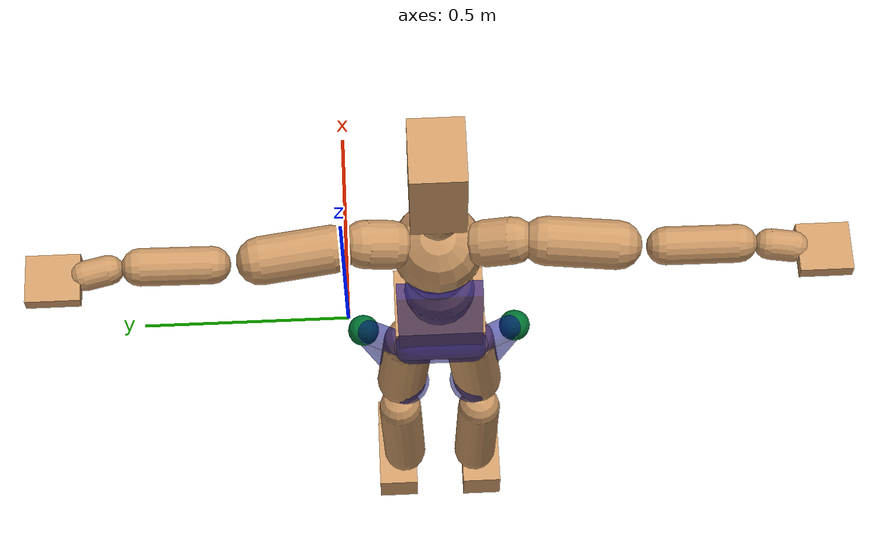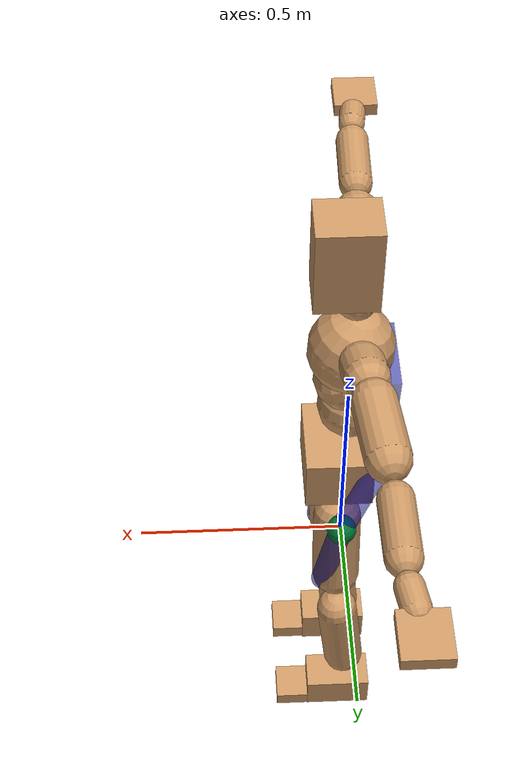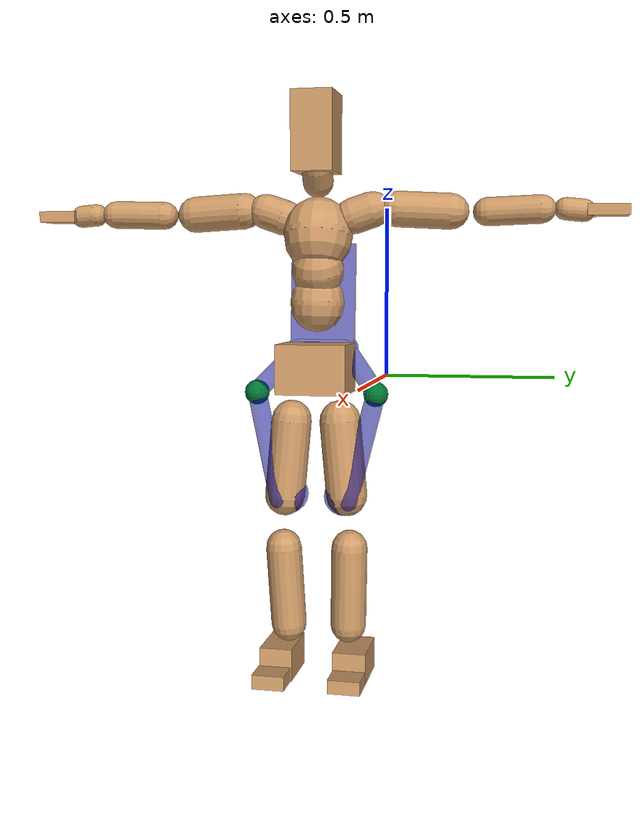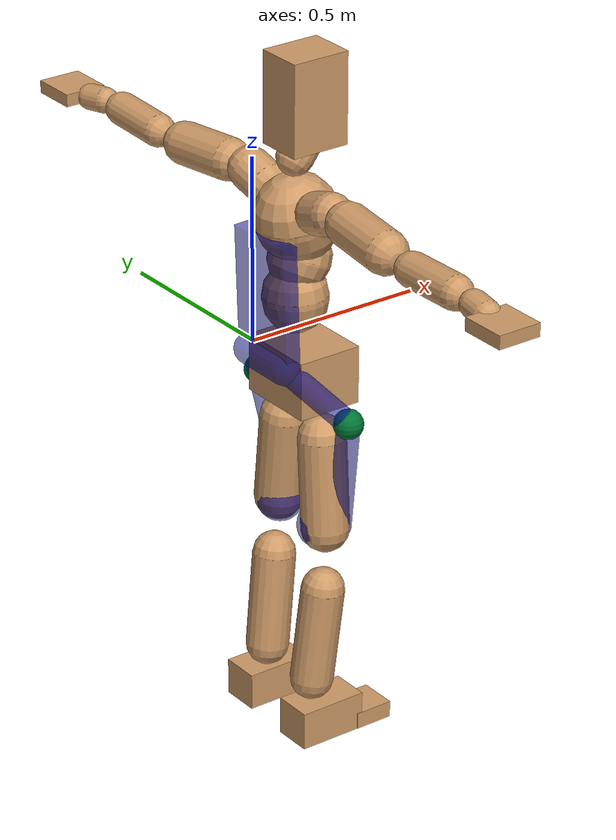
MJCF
<mujoco model="humanoid">
  <compiler coordinate="local" />
  <asset>
    <texture type="skybox" builtin="gradient" rgb1=".4 .5 .6" rgb2="0 0 0" width="100" height="100" />
    <texture builtin="flat" height="1278" mark="cross" markrgb="1 1 1" name="texgeom" random="0.01" rgb1="0.8 0.6 0.4" rgb2="0.8 0.6 0.4" type="cube" width="127" />
    <texture builtin="checker" height="100" name="texplane" rgb1="0 0 0" rgb2="0.8 0.8 0.8" type="2d" width="100" />
    <material name="MatPlane" reflectance="0.5" shininess="1" specular="1" texrepeat="60 60" texture="texplane" />
    <material name="geom" texture="texgeom" texuniform="true" />
  </asset>
  <worldbody>
    <light cutoff="100" diffuse="1 1 1" dir="-0 0 -1.3" directional="true" exponent="1" pos="0 0 1.3" specular=".1 .1 .1" />
    <body name="Pelvis" pos="-0.0018 -0.2233 0.0282">
      <geom type="box" pos="-0.0058 -0.0000 -0.0128" size="0.0875 0.1086 0.0767" quat="1.0000 0.0000 0.0000 0.0000" density="1000" conaffinity="1" condim="3" contype="7" margin="0.001" rgba="0.8 0.6 .4 1" />
      <body name="L_Hip" pos="-0.0054 0.0702 -0.0953">
        <joint name="L_Hip_x" type="hinge" pos="0 0 0" axis="1 0 0" stiffness="800" damping="80" armature="0.02" range="-180.0000 180.0000" limited="true" />
        <joint name="L_Hip_y" type="hinge" pos="0 0 0" axis="0 1 0" stiffness="800" damping="80" armature="0.02" range="-180.0000 180.0000" limited="true" />
        <joint name="L_Hip_z" type="hinge" pos="0 0 0" axis="0 0 1" stiffness="800" damping="80" armature="0.02" range="-180.0000 180.0000" limited="true" />
        <geom type="capsule" contype="1" conaffinity="1" density="2040.816327" fromto="-0.0009 0.0070 -0.0783 -0.0037 0.0278 -0.3135" size="0.0636" condim="3" margin="0.001" rgba="0.8 0.6 .4 1" />
        <body name="L_Knee" pos="-0.0037 0.0381 -0.3953">
          <joint name="L_Knee_x" type="hinge" pos="0 0 0" axis="1 0 0" stiffness="800" damping="80" armature="0.02" range="-180.0000 180.0000" limited="true" />
          <joint name="L_Knee_y" type="hinge" pos="0 0 0" axis="0 1 0" stiffness="800" damping="80" armature="0.02" range="-180.0000 180.0000" limited="true" />
          <joint name="L_Knee_z" type="hinge" pos="0 0 0" axis="0 0 1" stiffness="800" damping="80" armature="0.02" range="-180.0000 180.0000" limited="true" />
          <geom type="capsule" contype="1" conaffinity="1" density="1234.567901" fromto="-0.0091 -0.0028 -0.0850 -0.0367 -0.0113 -0.3400" size="0.0561" condim="3" margin="0.001" rgba="0.8 0.6 .4 1" />
          <body name="L_Ankle" pos="-0.0456 -0.0158 -0.4246">
            <joint name="L_Ankle_x" type="hinge" pos="0 0 0" axis="1 0 0" stiffness="800" damping="80" armature="0.02" range="-180.0000 180.0000" limited="true" />
            <joint name="L_Ankle_y" type="hinge" pos="0 0 0" axis="0 1 0" stiffness="800" damping="80" armature="0.02" range="-180.0000 180.0000" limited="true" />
            <joint name="L_Ankle_z" type="hinge" pos="0 0 0" axis="0 0 1" stiffness="800" damping="80" armature="0.02" range="-180.0000 180.0000" limited="true" />
            <geom type="box" pos="0.0255 0.0250 -0.0253" size="0.0897 0.0519 0.0492" quat="1.0000 0.0000 0.0000 0.0000" density="1000" conaffinity="1" condim="3" contype="7" margin="0.001" rgba="0.8 0.6 .4 1" />
            <body name="L_Toe" pos="0.1265 0.0293 -0.0586">
              <joint name="L_Toe_x" type="hinge" pos="0 0 0" axis="1 0 0" stiffness="500" damping="50" armature="0.02" range="-5.0000 5.0000" limited="true" />
              <joint name="L_Toe_y" type="hinge" pos="0 0 0" axis="0 1 0" stiffness="500" damping="50" armature="0.02" range="-5.0000 5.0000" limited="true" />
              <joint name="L_Toe_z" type="hinge" pos="0 0 0" axis="0 0 1" stiffness="500" damping="50" armature="0.02" range="-5.0000 5.0000" limited="true" />
              <geom type="box" pos="0.0261 -0.0032 0.0059" size="0.0523 0.0504 0.0213" quat="1.0000 0.0000 0.0000 0.0000" density="1000" conaffinity="1" condim="3" contype="7" margin="0.001" rgba="0.8 0.6 .4 1" />
            </body>
          </body>
        </body>
        <geom name="left_hip_motor" type="sphere" size="0.0385" pos="-0.000469 0.118289 0.005255" mass="0.53" contype="0" conaffinity="0" rgba="0.0 0.45 0.2 1" />
        <geom name="left_thigh_box" type="capsule" fromto="0.002551 0.111331 -0.023770 0.033895 0.039115 -0.325029" size="0.030" mass="0.1977" contype="0" conaffinity="0" rgba="0.0 0.0 0.55 0.55" />
        <geom name="left_hip_ring" type="sphere" pos="-0.007284 0.017379 -0.315218" size="0.061500" mass="0.0923" contype="0" conaffinity="0" rgba="0.0 0.0 0.55 0.55" />
      </body>
      <body name="R_Hip" pos="-0.0034 -0.0686 -0.0942">
        <joint name="R_Hip_x" type="hinge" pos="0 0 0" axis="1 0 0" stiffness="800" damping="80" armature="0.02" range="-180.0000 180.0000" limited="true" />
        <joint name="R_Hip_y" type="hinge" pos="0 0 0" axis="0 1 0" stiffness="800" damping="80" armature="0.02" range="-180.0000 180.0000" limited="true" />
        <joint name="R_Hip_z" type="hinge" pos="0 0 0" axis="0 0 1" stiffness="800" damping="80" armature="0.02" range="-180.0000 180.0000" limited="true" />
        <geom type="capsule" contype="1" conaffinity="1" density="2040.816327" fromto="-0.0019 -0.0078 -0.0803 -0.0073 -0.0310 -0.3215" size="0.0623" condim="3" margin="0.001" rgba="0.8 0.6 .4 1" />
        <body name="R_Knee" pos="-0.0096 -0.0415 -0.4040">
          <joint name="R_Knee_x" type="hinge" pos="0 0 0" axis="1 0 0" stiffness="800" damping="80" armature="0.02" range="-180.0000 180.0000" limited="true" />
          <joint name="R_Knee_y" type="hinge" pos="0 0 0" axis="0 1 0" stiffness="800" damping="80" armature="0.02" range="-180.0000 180.0000" limited="true" />
          <joint name="R_Knee_z" type="hinge" pos="0 0 0" axis="0 0 1" stiffness="800" damping="80" armature="0.02" range="-180.0000 180.0000" limited="true" />
          <geom type="capsule" contype="1" conaffinity="1" density="1234.567901" fromto="-0.0088 0.0033 -0.0852 -0.0352 0.0130 -0.3406" size="0.0559" condim="3" margin="0.001" rgba="0.8 0.6 .4 1" />
          <body name="R_Ankle" pos="-0.0443 0.0178 -0.4255">
            <joint name="R_Ankle_x" type="hinge" pos="0 0 0" axis="1 0 0" stiffness="800" damping="80" armature="0.02" range="-180.0000 180.0000" limited="true" />
            <joint name="R_Ankle_y" type="hinge" pos="0 0 0" axis="0 1 0" stiffness="800" damping="80" armature="0.02" range="-180.0000 180.0000" limited="true" />
            <joint name="R_Ankle_z" type="hinge" pos="0 0 0" axis="0 0 1" stiffness="800" damping="80" armature="0.02" range="-180.0000 180.0000" limited="true" />
            <geom type="box" pos="0.0271 -0.0225 -0.0186" size="0.0916 0.0513 0.0510" quat="1.0000 0.0000 0.0000 0.0000" density="1000" conaffinity="1" condim="3" contype="7" margin="0.001" rgba="0.8 0.6 .4 1" />
            <body name="R_Toe" pos="0.1312 -0.0297 -0.0513">
              <joint name="R_Toe_x" type="hinge" pos="0 0 0" axis="1 0 0" stiffness="500" damping="50" armature="0.02" range="-5.0000 5.0000" limited="true" />
              <joint name="R_Toe_y" type="hinge" pos="0 0 0" axis="0 1 0" stiffness="500" damping="50" armature="0.02" range="-5.0000 5.0000" limited="true" />
              <joint name="R_Toe_z" type="hinge" pos="0 0 0" axis="0 0 1" stiffness="500" damping="50" armature="0.02" range="-5.0000 5.0000" limited="true" />
              <geom type="box" pos="0.0240 0.0044 0.0046" size="0.0522 0.0507 0.0223" quat="1.0000 0.0000 0.0000 0.0000" density="1000" conaffinity="1" condim="3" contype="7" margin="0.001" rgba="0.8 0.6 .4 1" />
            </body>
          </body>
        </body>
        <geom name="right_hip_motor" type="sphere" size="0.0385" pos="-0.005199 -0.119211 0.003827" mass="0.53" contype="0" conaffinity="0" rgba="0.0 0.45 0.2 1" />
        <geom name="right_thigh_box" type="capsule" fromto="-0.002132 -0.112377 -0.025223 0.029619 -0.041620 -0.325993" size="0.030" mass="0.1977" contype="0" conaffinity="0" rgba="0.0 0.0 0.55 0.55" />
        <geom name="right_hip_ring" type="sphere" pos="-0.013104 -0.018825 -0.316393" size="0.060600" mass="0.0923" contype="0" conaffinity="0" rgba="0.0 0.0 0.55 0.55" />
      </body>
      <body name="Torso" pos="-0.0321 -0.0026 0.1167">
        <joint name="Torso_x" type="hinge" pos="0 0 0" axis="1 0 0" stiffness="1000" damping="100" armature="0.02" range="-180.0000 180.0000" limited="true" />
        <joint name="Torso_y" type="hinge" pos="0 0 0" axis="0 1 0" stiffness="1000" damping="100" armature="0.02" range="-180.0000 180.0000" limited="true" />
        <joint name="Torso_z" type="hinge" pos="0 0 0" axis="0 0 1" stiffness="1000" damping="100" armature="0.02" range="-180.0000 180.0000" limited="true" />
        <geom type="capsule" contype="1" conaffinity="1" density="2040.816327" fromto="0.0005 0.0027 0.0654 0.0006 0.0033 0.0799" size="0.0834" condim="3" margin="0.001" rgba="0.8 0.6 .4 1" />
        <body name="Spine" pos="0.0028 0.0071 0.1437">
          <joint name="Spine_x" type="hinge" pos="0 0 0" axis="1 0 0" stiffness="1000" damping="100" armature="0.02" range="-180.0000 180.0000" limited="true" />
          <joint name="Spine_y" type="hinge" pos="0 0 0" axis="0 1 0" stiffness="1000" damping="100" armature="0.02" range="-180.0000 180.0000" limited="true" />
          <joint name="Spine_z" type="hinge" pos="0 0 0" axis="0 0 1" stiffness="1000" damping="100" armature="0.02" range="-180.0000 180.0000" limited="true" />
          <geom type="capsule" contype="1" conaffinity="1" density="2040.816327" fromto="0.0123 0.0008 0.0258 0.0151 0.0009 0.0315" size="0.0802" condim="3" margin="0.001" rgba="0.8 0.6 .4 1" />
          <body name="Chest" pos="0.0246 0.0009 0.0572">
            <joint name="Chest_x" type="hinge" pos="0 0 0" axis="1 0 0" stiffness="1000" damping="100" armature="0.02" range="-180.0000 180.0000" limited="true" />
            <joint name="Chest_y" type="hinge" pos="0 0 0" axis="0 1 0" stiffness="1000" damping="100" armature="0.02" range="-180.0000 180.0000" limited="true" />
            <joint name="Chest_z" type="hinge" pos="0 0 0" axis="0 0 1" stiffness="1000" damping="100" armature="0.02" range="-180.0000 180.0000" limited="true" />
            <geom type="capsule" contype="1" conaffinity="1" density="2040.816327" fromto="-0.0179 -0.0010 0.0722 -0.0220 -0.0011 0.0882" size="0.1064" condim="3" margin="0.001" rgba="0.8 0.6 .4 1" />
            <body name="Neck" pos="-0.0384 -0.0034 0.2253">
              <joint name="Neck_x" type="hinge" pos="0 0 0" axis="1 0 0" stiffness="500" damping="50" armature="0.02" range="-180.0000 180.0000" limited="true" />
              <joint name="Neck_y" type="hinge" pos="0 0 0" axis="0 1 0" stiffness="500" damping="50" armature="0.02" range="-180.0000 180.0000" limited="true" />
              <joint name="Neck_z" type="hinge" pos="0 0 0" axis="0 0 1" stiffness="500" damping="50" armature="0.02" range="-180.0000 180.0000" limited="true" />
              <geom type="capsule" contype="1" conaffinity="1" density="1000" fromto="0.0111 0.0011 0.0135 0.0444 0.0044 0.0540" size="0.0471" condim="3" margin="0.001" rgba="0.8 0.6 .4 1" />
              <body name="Head" pos="0.0536 0.0064 0.0684">
                <joint name="Head_x" type="hinge" pos="0 0 0" axis="1 0 0" stiffness="500" damping="50" armature="0.02" range="-180.0000 180.0000" limited="true" />
                <joint name="Head_y" type="hinge" pos="0 0 0" axis="0 1 0" stiffness="500" damping="50" armature="0.02" range="-180.0000 180.0000" limited="true" />
                <joint name="Head_z" type="hinge" pos="0 0 0" axis="0 0 1" stiffness="500" damping="50" armature="0.02" range="-180.0000 180.0000" limited="true" />
                <geom type="box" pos="-0.0121 -0.0044 0.0909" size="0.0790 0.0633 0.1198" quat="1.0000 0.0000 0.0000 0.0000" density="1000" conaffinity="1" condim="3" contype="7" margin="0.001" rgba="0.8 0.6 .4 1" />
              </body>
            </body>
            <body name="L_Thorax" pos="-0.0329 0.0839 0.1287">
              <joint name="L_Thorax_x" type="hinge" pos="0 0 0" axis="1 0 0" stiffness="500" damping="50" armature="0.02" range="-180.0000 180.0000" limited="true" />
              <joint name="L_Thorax_y" type="hinge" pos="0 0 0" axis="0 1 0" stiffness="500" damping="50" armature="0.02" range="-180.0000 180.0000" limited="true" />
              <joint name="L_Thorax_z" type="hinge" pos="0 0 0" axis="0 0 1" stiffness="500" damping="50" armature="0.02" range="-180.0000 180.0000" limited="true" />
              <geom type="capsule" contype="1" conaffinity="1" density="1000" fromto="-0.0019 0.0201 0.0066 -0.0076 0.0803 0.0264" size="0.0559" condim="3" margin="0.001" rgba="0.8 0.6 .4 1" />
              <body name="L_Shoulder" pos="-0.0106 0.0973 0.0305">
                <joint name="L_Shoulder_x" type="hinge" pos="0 0 0" axis="1 0 0" stiffness="500" damping="50" armature="0.02" range="-180.0000 180.0000" limited="true" />
                <joint name="L_Shoulder_y" type="hinge" pos="0 0 0" axis="0 1 0" stiffness="500" damping="50" armature="0.02" range="-180.0000 180.0000" limited="true" />
                <joint name="L_Shoulder_z" type="hinge" pos="0 0 0" axis="0 0 1" stiffness="500" damping="50" armature="0.02" range="-180.0000 180.0000" limited="true" />
                <geom type="capsule" contype="1" conaffinity="1" density="1000" fromto="-0.0060 0.0547 -0.0028 -0.0240 0.2190 -0.0109" size="0.0552" condim="3" margin="0.001" rgba="0.8 0.6 .4 1" />
                <body name="L_Elbow" pos="-0.0288 0.2748 -0.0147">
                  <joint name="L_Elbow_x" type="hinge" pos="0 0 0" axis="1 0 0" stiffness="500" damping="50" armature="0.02" range="-180.0000 180.0000" limited="true" />
                  <joint name="L_Elbow_y" type="hinge" pos="0 0 0" axis="0 1 0" stiffness="500" damping="50" armature="0.02" range="-180.0000 180.0000" limited="true" />
                  <joint name="L_Elbow_z" type="hinge" pos="0 0 0" axis="0 0 1" stiffness="500" damping="50" armature="0.02" range="-180.0000 180.0000" limited="true" />
                  <geom type="capsule" contype="1" conaffinity="1" density="1000" fromto="-0.0002 0.0533 0.0019 -0.0010 0.2136 0.0077" size="0.0432" condim="3" margin="0.001" rgba="0.8 0.6 .4 1" />
                  <body name="L_Wrist" pos="-0.0017 0.2661 0.0097">
                    <joint name="L_Wrist_x" type="hinge" pos="0 0 0" axis="1 0 0" stiffness="300" damping="30" armature="0.02" range="-180.0000 180.0000" limited="true" />
                    <joint name="L_Wrist_y" type="hinge" pos="0 0 0" axis="0 1 0" stiffness="300" damping="30" armature="0.02" range="-180.0000 180.0000" limited="true" />
                    <joint name="L_Wrist_z" type="hinge" pos="0 0 0" axis="0 0 1" stiffness="300" damping="30" armature="0.02" range="-180.0000 180.0000" limited="true" />
                    <geom type="capsule" contype="1" conaffinity="1" density="1000" fromto="-0.0032 0.0179 -0.0017 -0.0130 0.0714 -0.0069" size="0.0340" condim="3" margin="0.001" rgba="0.8 0.6 .4 1" />
                    <body name="L_Hand" pos="-0.0168 0.0899 -0.0072">
                      <joint name="L_Hand_x" type="hinge" pos="0 0 0" axis="1 0 0" stiffness="300" damping="30" armature="0.02" range="-5.0000 5.0000" limited="true" />
                      <joint name="L_Hand_y" type="hinge" pos="0 0 0" axis="0 1 0" stiffness="300" damping="30" armature="0.02" range="-5.0000 5.0000" limited="true" />
                      <joint name="L_Hand_z" type="hinge" pos="0 0 0" axis="0 0 1" stiffness="300" damping="30" armature="0.02" range="-5.0000 5.0000" limited="true" />
                      <geom type="box" pos="-0.0062 0.0520 0.0011" size="0.0572 0.0617 0.0167" quat="1.0000 0.0000 0.0000 0.0000" density="1000" conaffinity="1" condim="3" contype="7" margin="0.001" rgba="0.8 0.6 .4 1" />
                    </body>
                  </body>
                </body>
              </body>
            </body>
            <body name="R_Thorax" pos="-0.0372 -0.0876 0.1250">
              <joint name="R_Thorax_x" type="hinge" pos="0 0 0" axis="1 0 0" stiffness="500" damping="50" armature="0.02" range="-180.0000 180.0000" limited="true" />
              <joint name="R_Thorax_y" type="hinge" pos="0 0 0" axis="0 1 0" stiffness="500" damping="50" armature="0.02" range="-180.0000 180.0000" limited="true" />
              <joint name="R_Thorax_z" type="hinge" pos="0 0 0" axis="0 0 1" stiffness="500" damping="50" armature="0.02" range="-180.0000 180.0000" limited="true" />
              <geom type="capsule" contype="1" conaffinity="1" density="1000" fromto="-0.0019 -0.0207 0.0070 -0.0078 -0.0830 0.0281" size="0.0544" condim="3" margin="0.001" rgba="0.8 0.6 .4 1" />
              <body name="R_Shoulder" pos="-0.0087 -0.1034 0.0335">
                <joint name="R_Shoulder_x" type="hinge" pos="0 0 0" axis="1 0 0" stiffness="500" damping="50" armature="0.02" range="-180.0000 180.0000" limited="true" />
                <joint name="R_Shoulder_y" type="hinge" pos="0 0 0" axis="0 1 0" stiffness="500" damping="50" armature="0.02" range="-180.0000 180.0000" limited="true" />
                <joint name="R_Shoulder_z" type="hinge" pos="0 0 0" axis="0 0 1" stiffness="500" damping="50" armature="0.02" range="-180.0000 180.0000" limited="true" />
                <geom type="capsule" contype="1" conaffinity="1" density="1000" fromto="-0.0046 -0.0537 -0.0029 -0.0184 -0.2152 -0.0114" size="0.0565" condim="3" margin="0.001" rgba="0.8 0.6 .4 1" />
                <body name="R_Elbow" pos="-0.0237 -0.2686 -0.0147">
                  <joint name="R_Elbow_x" type="hinge" pos="0 0 0" axis="1 0 0" stiffness="500" damping="50" armature="0.02" range="-180.0000 180.0000" limited="true" />
                  <joint name="R_Elbow_y" type="hinge" pos="0 0 0" axis="0 1 0" stiffness="500" damping="50" armature="0.02" range="-180.0000 180.0000" limited="true" />
                  <joint name="R_Elbow_z" type="hinge" pos="0 0 0" axis="0 0 1" stiffness="500" damping="50" armature="0.02" range="-180.0000 180.0000" limited="true" />
                  <geom type="capsule" contype="1" conaffinity="1" density="1000" fromto="-0.0012 -0.0545 0.0017 -0.0047 -0.2180 0.0066" size="0.0437" condim="3" margin="0.001" rgba="0.8 0.6 .4 1" />
                  <body name="R_Wrist" pos="-0.0071 -0.2714 0.0077">
                    <joint name="R_Wrist_x" type="hinge" pos="0 0 0" axis="1 0 0" stiffness="300" damping="30" armature="0.02" range="-180.0000 180.0000" limited="true" />
                    <joint name="R_Wrist_y" type="hinge" pos="0 0 0" axis="0 1 0" stiffness="300" damping="30" armature="0.02" range="-180.0000 180.0000" limited="true" />
                    <joint name="R_Wrist_z" type="hinge" pos="0 0 0" axis="0 0 1" stiffness="300" damping="30" armature="0.02" range="-180.0000 180.0000" limited="true" />
                    <geom type="capsule" contype="1" conaffinity="1" density="1000" fromto="-0.0023 -0.0177 -0.0013 -0.0090 -0.0710 -0.0051" size="0.0353" condim="3" margin="0.001" rgba="0.8 0.6 .4 1" />
                    <body name="R_Hand" pos="-0.0105 -0.0904 -0.0054">
                      <joint name="R_Hand_x" type="hinge" pos="0 0 0" axis="1 0 0" stiffness="300" damping="30" armature="0.02" range="-5.0000 5.0000" limited="true" />
                      <joint name="R_Hand_y" type="hinge" pos="0 0 0" axis="0 1 0" stiffness="300" damping="30" armature="0.02" range="-5.0000 5.0000" limited="true" />
                      <joint name="R_Hand_z" type="hinge" pos="0 0 0" axis="0 0 1" stiffness="300" damping="30" armature="0.02" range="-5.0000 5.0000" limited="true" />
                      <geom type="box" pos="-0.0084 -0.0488 -0.0010" size="0.0582 0.0601 0.0174" quat="1.0000 0.0000 0.0000 0.0000" density="1000" conaffinity="1" condim="3" contype="7" margin="0.001" rgba="0.8 0.6 .4 1" />
                    </body>
                  </body>
                </body>
              </body>
            </body>
          </body>
        </body>
      </body>
      <joint type="free" name="Pelvis" limited="false" actuatorfrclimited="false" />
      <geom name="waist_hip_bar" type="capsule" fromto="-0.1166 -0.074 0.0436 -0.1166 0.074 0.0436" size="0.040" mass="0.9389" contype="0" conaffinity="0" rgba="0.0 0.0 0.55 0.55" />
      <geom name="waist_hip_arm_l" type="capsule" fromto="-0.007269 0.187789 -0.086145 -0.116600 0.074000 0.043600" size="0.030" mass="0.3756" contype="0" conaffinity="0" rgba="0.0 0.0 0.55 0.55" />
      <geom name="waist_hip_arm_r" type="capsule" fromto="-0.009499 -0.186911 -0.086673 -0.116600 -0.074000 0.043600" size="0.030" mass="0.3756" contype="0" conaffinity="0" rgba="0.0 0.0 0.55 0.55" />
      <geom name="exo_main_col" type="box" size="0.020000 0.100000 0.160452" pos="-0.114674 0.002139 0.212481" quat="0.99987008 -0.00439565 -0.01550794 -0.00006818" mass="1.37" contype="0" conaffinity="0" rgba="0.0 0.0 0.55 0.55" />
    </body>
  </worldbody>
  <actuator>
    <motor name="L_Hip_x" joint="L_Hip_x" gear="500" />
    <motor name="L_Hip_y" joint="L_Hip_y" gear="500" />
    <motor name="L_Hip_z" joint="L_Hip_z" gear="500" />
    <motor name="L_Knee_x" joint="L_Knee_x" gear="500" />
    <motor name="L_Knee_y" joint="L_Knee_y" gear="500" />
    <motor name="L_Knee_z" joint="L_Knee_z" gear="500" />
    <motor name="L_Ankle_x" joint="L_Ankle_x" gear="500" />
    <motor name="L_Ankle_y" joint="L_Ankle_y" gear="500" />
    <motor name="L_Ankle_z" joint="L_Ankle_z" gear="500" />
    <motor name="L_Toe_x" joint="L_Toe_x" gear="500" />
    <motor name="L_Toe_y" joint="L_Toe_y" gear="500" />
    <motor name="L_Toe_z" joint="L_Toe_z" gear="500" />
    <motor name="R_Hip_x" joint="R_Hip_x" gear="500" />
    <motor name="R_Hip_y" joint="R_Hip_y" gear="500" />
    <motor name="R_Hip_z" joint="R_Hip_z" gear="500" />
    <motor name="R_Knee_x" joint="R_Knee_x" gear="500" />
    <motor name="R_Knee_y" joint="R_Knee_y" gear="500" />
    <motor name="R_Knee_z" joint="R_Knee_z" gear="500" />
    <motor name="R_Ankle_x" joint="R_Ankle_x" gear="500" />
    <motor name="R_Ankle_y" joint="R_Ankle_y" gear="500" />
    <motor name="R_Ankle_z" joint="R_Ankle_z" gear="500" />
    <motor name="R_Toe_x" joint="R_Toe_x" gear="500" />
    <motor name="R_Toe_y" joint="R_Toe_y" gear="500" />
    <motor name="R_Toe_z" joint="R_Toe_z" gear="500" />
    <motor name="Torso_x" joint="Torso_x" gear="500" />
    <motor name="Torso_y" joint="Torso_y" gear="500" />
    <motor name="Torso_z" joint="Torso_z" gear="500" />
    <motor name="Spine_x" joint="Spine_x" gear="500" />
    <motor name="Spine_y" joint="Spine_y" gear="500" />
    <motor name="Spine_z" joint="Spine_z" gear="500" />
    <motor name="Chest_x" joint="Chest_x" gear="500" />
    <motor name="Chest_y" joint="Chest_y" gear="500" />
    <motor name="Chest_z" joint="Chest_z" gear="500" />
    <motor name="Neck_x" joint="Neck_x" gear="500" />
    <motor name="Neck_y" joint="Neck_y" gear="500" />
    <motor name="Neck_z" joint="Neck_z" gear="500" />
    <motor name="Head_x" joint="Head_x" gear="500" />
    <motor name="Head_y" joint="Head_y" gear="500" />
    <motor name="Head_z" joint="Head_z" gear="500" />
    <motor name="L_Thorax_x" joint="L_Thorax_x" gear="500" />
    <motor name="L_Thorax_y" joint="L_Thorax_y" gear="500" />
    <motor name="L_Thorax_z" joint="L_Thorax_z" gear="500" />
    <motor name="L_Shoulder_x" joint="L_Shoulder_x" gear="500" />
    <motor name="L_Shoulder_y" joint="L_Shoulder_y" gear="500" />
    <motor name="L_Shoulder_z" joint="L_Shoulder_z" gear="500" />
    <motor name="L_Elbow_x" joint="L_Elbow_x" gear="500" />
    <motor name="L_Elbow_y" joint="L_Elbow_y" gear="500" />
    <motor name="L_Elbow_z" joint="L_Elbow_z" gear="500" />
    <motor name="L_Wrist_x" joint="L_Wrist_x" gear="500" />
    <motor name="L_Wrist_y" joint="L_Wrist_y" gear="500" />
    <motor name="L_Wrist_z" joint="L_Wrist_z" gear="500" />
    <motor name="L_Hand_x" joint="L_Hand_x" gear="500" />
    <motor name="L_Hand_y" joint="L_Hand_y" gear="500" />
    <motor name="L_Hand_z" joint="L_Hand_z" gear="500" />
    <motor name="R_Thorax_x" joint="R_Thorax_x" gear="500" />
    <motor name="R_Thorax_y" joint="R_Thorax_y" gear="500" />
    <motor name="R_Thorax_z" joint="R_Thorax_z" gear="500" />
    <motor name="R_Shoulder_x" joint="R_Shoulder_x" gear="500" />
    <motor name="R_Shoulder_y" joint="R_Shoulder_y" gear="500" />
    <motor name="R_Shoulder_z" joint="R_Shoulder_z" gear="500" />
    <motor name="R_Elbow_x" joint="R_Elbow_x" gear="500" />
    <motor name="R_Elbow_y" joint="R_Elbow_y" gear="500" />
    <motor name="R_Elbow_z" joint="R_Elbow_z" gear="500" />
    <motor name="R_Wrist_x" joint="R_Wrist_x" gear="500" />
    <motor name="R_Wrist_y" joint="R_Wrist_y" gear="500" />
    <motor name="R_Wrist_z" joint="R_Wrist_z" gear="500" />
    <motor name="R_Hand_x" joint="R_Hand_x" gear="500" />
    <motor name="R_Hand_y" joint="R_Hand_y" gear="500" />
    <motor name="R_Hand_z" joint="R_Hand_z" gear="500" />
    <motor name="exo_hip_l" joint="L_Hip_y" gear="23.7" ctrllimited="true" ctrlrange="-1 1" />
    <motor name="exo_hip_r" joint="R_Hip_y" gear="23.7" ctrllimited="true" ctrlrange="-1 1" />
  </actuator>
  <contact>
    <exclude body1="Torso" body2="Chest" />
    <exclude body1="Head" body2="Chest" />
    <exclude body1="R_Knee" body2="R_Toe" />
    <exclude body1="R_Knee" body2="L_Ankle" />
    <exclude body1="R_Knee" body2="L_Toe" />
    <exclude body1="L_Knee" body2="L_Toe" />
    <exclude body1="L_Knee" body2="R_Ankle" />
    <exclude body1="L_Knee" body2="R_Toe" />
    <exclude body1="L_Shoulder" body2="Chest" />
    <exclude body1="R_Shoulder" body2="Chest" />
  </contact>
  <sensor />
  <size njmax="700" nconmax="700" />
</mujoco>
